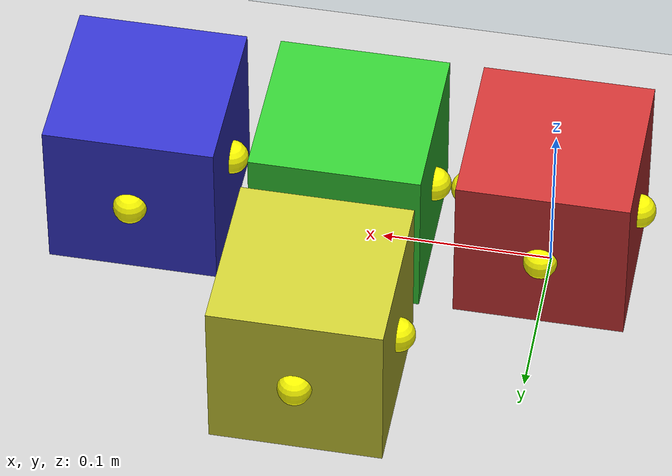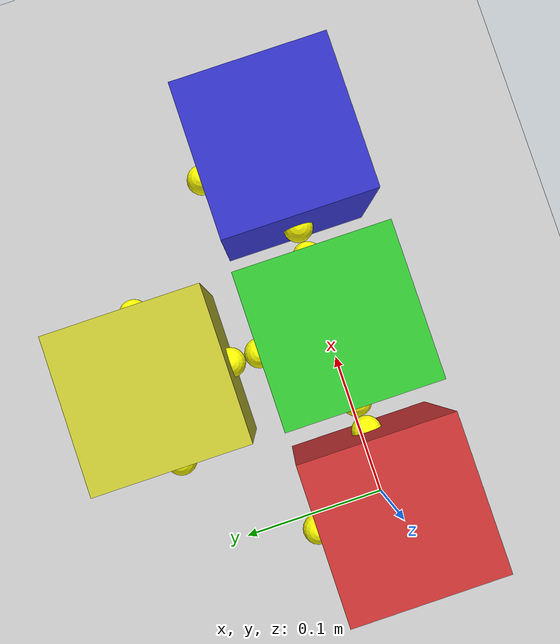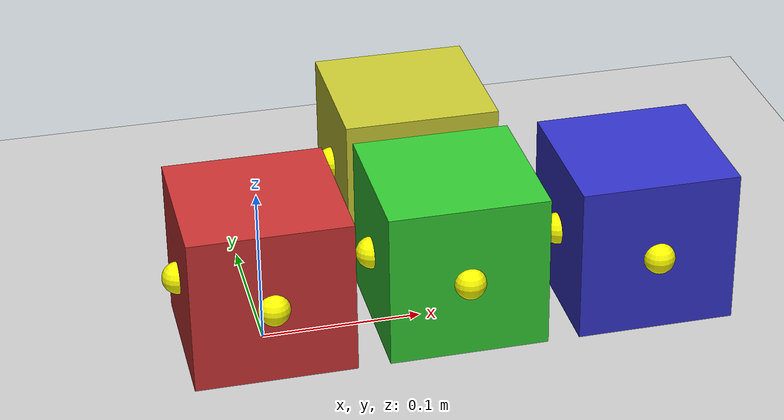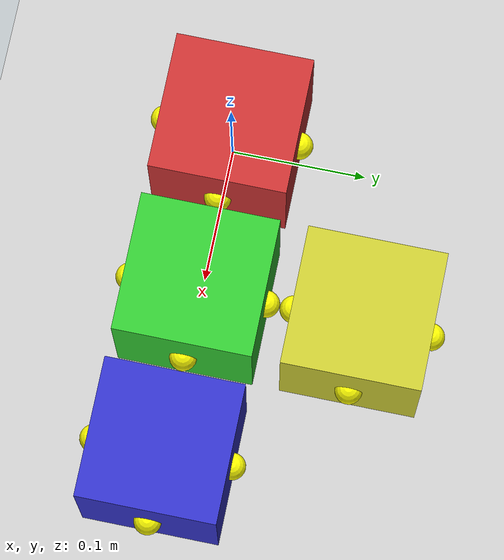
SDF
<?xml version="1.0"?>
<sdf version="1.9">
  <world name="docking_demo">
    <!-- Physics configuration -->
    <physics name="1ms" type="ignored">
      <max_step_size>0.001</max_step_size>
      <real_time_factor>1.0</real_time_factor>
    </physics>

    <!-- Required system plugins -->
    <plugin filename="gz-sim-physics-system"
            name="gz::sim::systems::Physics">
    </plugin>
    <plugin filename="gz-sim-user-commands-system"
            name="gz::sim::systems::UserCommands">
    </plugin>
    <plugin filename="gz-sim-scene-broadcaster-system"
            name="gz::sim::systems::SceneBroadcaster">
    </plugin>

    <!-- Lighting -->
    <light type="directional" name="sun">
      <cast_shadows>true</cast_shadows>
      <pose>0 0 10 0 0 0</pose>
      <diffuse>0.8 0.8 0.8 1</diffuse>
      <specular>0.2 0.2 0.2 1</specular>
      <attenuation>
        <range>1000</range>
        <constant>0.9</constant>
        <linear>0.01</linear>
        <quadratic>0.001</quadratic>
      </attenuation>
      <direction>-0.5 0.1 -0.9</direction>
    </light>

    <!-- Ground plane -->
    <model name="ground_plane">
      <static>true</static>
      <link name="link">
        <collision name="collision">
          <geometry>
            <plane>
              <normal>0 0 1</normal>
            </plane>
          </geometry>
        </collision>
        <visual name="visual">
          <geometry>
            <plane>
              <normal>0 0 1</normal>
              <size>100 100</size>
            </plane>
          </geometry>
          <material>
            <ambient>0.8 0.8 0.8 1</ambient>
            <diffuse>0.8 0.8 0.8 1</diffuse>
            <specular>0.8 0.8 0.8 1</specular>
          </material>
        </visual>
      </link>
    </model>

    <!-- ========== ROBOT 0 (Red) ========== -->
    <model name="robot_0">
      <pose>0 0 0.05 0 0 0</pose>
      <link name="chassis">
        <inertial>
          <mass>1.0</mass>
          <inertia>
            <ixx>0.00167</ixx>
            <iyy>0.00167</iyy>
            <izz>0.00167</izz>
            <ixy>0</ixy>
            <ixz>0</ixz>
            <iyz>0</iyz>
          </inertia>
        </inertial>
        <collision name="collision">
          <geometry>
            <box><size>0.1 0.1 0.1</size></box>
          </geometry>
        </collision>
        <visual name="visual">
          <geometry>
            <box><size>0.1 0.1 0.1</size></box>
          </geometry>
          <material>
            <ambient>0.8 0.2 0.2 1</ambient>
            <diffuse>0.8 0.2 0.2 1</diffuse>
            <specular>0.8 0.2 0.2 1</specular>
          </material>
        </visual>
      </link>
      <!-- Dock ports as small visual indicators -->
      <link name="dock_front">
        <pose relative_to="chassis">0.05 0 0 0 0 0</pose>
        <inertial>
          <mass>0.01</mass>
          <inertia>
            <ixx>0.00001</ixx><iyy>0.00001</iyy><izz>0.00001</izz>
            <ixy>0</ixy><ixz>0</ixz><iyz>0</iyz>
          </inertia>
        </inertial>
        <visual name="visual">
          <geometry><sphere><radius>0.01</radius></sphere></geometry>
          <material>
            <ambient>1 1 0 1</ambient>
            <diffuse>1 1 0 1</diffuse>
          </material>
        </visual>
      </link>
      <joint name="dock_front_joint" type="fixed">
        <parent>chassis</parent>
        <child>dock_front</child>
      </joint>
      <link name="dock_back">
        <pose relative_to="chassis">-0.05 0 0 0 0 0</pose>
        <inertial>
          <mass>0.01</mass>
          <inertia>
            <ixx>0.00001</ixx><iyy>0.00001</iyy><izz>0.00001</izz>
            <ixy>0</ixy><ixz>0</ixz><iyz>0</iyz>
          </inertia>
        </inertial>
        <visual name="visual">
          <geometry><sphere><radius>0.01</radius></sphere></geometry>
          <material>
            <ambient>1 1 0 1</ambient>
            <diffuse>1 1 0 1</diffuse>
          </material>
        </visual>
      </link>
      <joint name="dock_back_joint" type="fixed">
        <parent>chassis</parent>
        <child>dock_back</child>
      </joint>
      <link name="dock_left">
        <pose relative_to="chassis">0 0.05 0 0 0 0</pose>
        <inertial>
          <mass>0.01</mass>
          <inertia>
            <ixx>0.00001</ixx><iyy>0.00001</iyy><izz>0.00001</izz>
            <ixy>0</ixy><ixz>0</ixz><iyz>0</iyz>
          </inertia>
        </inertial>
        <visual name="visual">
          <geometry><sphere><radius>0.01</radius></sphere></geometry>
          <material>
            <ambient>1 1 0 1</ambient>
            <diffuse>1 1 0 1</diffuse>
          </material>
        </visual>
      </link>
      <joint name="dock_left_joint" type="fixed">
        <parent>chassis</parent>
        <child>dock_left</child>
      </joint>
      <link name="dock_right">
        <pose relative_to="chassis">0 -0.05 0 0 0 0</pose>
        <inertial>
          <mass>0.01</mass>
          <inertia>
            <ixx>0.00001</ixx><iyy>0.00001</iyy><izz>0.00001</izz>
            <ixy>0</ixy><ixz>0</ixz><iyz>0</iyz>
          </inertia>
        </inertial>
        <visual name="visual">
          <geometry><sphere><radius>0.01</radius></sphere></geometry>
          <material>
            <ambient>1 1 0 1</ambient>
            <diffuse>1 1 0 1</diffuse>
          </material>
        </visual>
      </link>
      <joint name="dock_right_joint" type="fixed">
        <parent>chassis</parent>
        <child>dock_right</child>
      </joint>
      <!-- DetachableJoint: robot_0 front -> robot_1 back -->
      <plugin filename="ignition-gazebo-detachable-joint-system"
              name="ignition::gazebo::systems::DetachableJoint">
        <parent_link>chassis</parent_link>
        <child_model>robot_1</child_model>
        <child_link>chassis</child_link>
        <detach_topic>/robot_0/dock_front/detach</detach_topic>
        <attach_topic>/robot_0/dock_front/attach</attach_topic>
        <output_topic>/robot_0/dock_front/state</output_topic>
      </plugin>
    </model>

    <!-- ========== ROBOT 1 (Green) ========== -->
    <model name="robot_1">
      <pose>0.12 0 0.05 0 0 0</pose>
      <link name="chassis">
        <inertial>
          <mass>1.0</mass>
          <inertia>
            <ixx>0.00167</ixx>
            <iyy>0.00167</iyy>
            <izz>0.00167</izz>
            <ixy>0</ixy>
            <ixz>0</ixz>
            <iyz>0</iyz>
          </inertia>
        </inertial>
        <collision name="collision">
          <geometry>
            <box><size>0.1 0.1 0.1</size></box>
          </geometry>
        </collision>
        <visual name="visual">
          <geometry>
            <box><size>0.1 0.1 0.1</size></box>
          </geometry>
          <material>
            <ambient>0.2 0.8 0.2 1</ambient>
            <diffuse>0.2 0.8 0.2 1</diffuse>
            <specular>0.2 0.8 0.2 1</specular>
          </material>
        </visual>
      </link>
      <link name="dock_front">
        <pose relative_to="chassis">0.05 0 0 0 0 0</pose>
        <inertial>
          <mass>0.01</mass>
          <inertia>
            <ixx>0.00001</ixx><iyy>0.00001</iyy><izz>0.00001</izz>
            <ixy>0</ixy><ixz>0</ixz><iyz>0</iyz>
          </inertia>
        </inertial>
        <visual name="visual">
          <geometry><sphere><radius>0.01</radius></sphere></geometry>
          <material>
            <ambient>1 1 0 1</ambient>
            <diffuse>1 1 0 1</diffuse>
          </material>
        </visual>
      </link>
      <joint name="dock_front_joint" type="fixed">
        <parent>chassis</parent>
        <child>dock_front</child>
      </joint>
      <link name="dock_back">
        <pose relative_to="chassis">-0.05 0 0 0 0 0</pose>
        <inertial>
          <mass>0.01</mass>
          <inertia>
            <ixx>0.00001</ixx><iyy>0.00001</iyy><izz>0.00001</izz>
            <ixy>0</ixy><ixz>0</ixz><iyz>0</iyz>
          </inertia>
        </inertial>
        <visual name="visual">
          <geometry><sphere><radius>0.01</radius></sphere></geometry>
          <material>
            <ambient>1 1 0 1</ambient>
            <diffuse>1 1 0 1</diffuse>
          </material>
        </visual>
      </link>
      <joint name="dock_back_joint" type="fixed">
        <parent>chassis</parent>
        <child>dock_back</child>
      </joint>
      <link name="dock_left">
        <pose relative_to="chassis">0 0.05 0 0 0 0</pose>
        <inertial>
          <mass>0.01</mass>
          <inertia>
            <ixx>0.00001</ixx><iyy>0.00001</iyy><izz>0.00001</izz>
            <ixy>0</ixy><ixz>0</ixz><iyz>0</iyz>
          </inertia>
        </inertial>
        <visual name="visual">
          <geometry><sphere><radius>0.01</radius></sphere></geometry>
          <material>
            <ambient>1 1 0 1</ambient>
            <diffuse>1 1 0 1</diffuse>
          </material>
        </visual>
      </link>
      <joint name="dock_left_joint" type="fixed">
        <parent>chassis</parent>
        <child>dock_left</child>
      </joint>
      <link name="dock_right">
        <pose relative_to="chassis">0 -0.05 0 0 0 0</pose>
        <inertial>
          <mass>0.01</mass>
          <inertia>
            <ixx>0.00001</ixx><iyy>0.00001</iyy><izz>0.00001</izz>
            <ixy>0</ixy><ixz>0</ixz><iyz>0</iyz>
          </inertia>
        </inertial>
        <visual name="visual">
          <geometry><sphere><radius>0.01</radius></sphere></geometry>
          <material>
            <ambient>1 1 0 1</ambient>
            <diffuse>1 1 0 1</diffuse>
          </material>
        </visual>
      </link>
      <joint name="dock_right_joint" type="fixed">
        <parent>chassis</parent>
        <child>dock_right</child>
      </joint>
      <!-- DetachableJoint: robot_1 front -> robot_2 back -->
      <plugin filename="ignition-gazebo-detachable-joint-system"
              name="ignition::gazebo::systems::DetachableJoint">
        <parent_link>chassis</parent_link>
        <child_model>robot_2</child_model>
        <child_link>chassis</child_link>
        <detach_topic>/robot_1/dock_front/detach</detach_topic>
        <attach_topic>/robot_1/dock_front/attach</attach_topic>
        <output_topic>/robot_1/dock_front/state</output_topic>
      </plugin>
      <!-- DetachableJoint: robot_1 left -> robot_3 right (branching demo) -->
      <plugin filename="ignition-gazebo-detachable-joint-system"
              name="ignition::gazebo::systems::DetachableJoint">
        <parent_link>chassis</parent_link>
        <child_model>robot_3</child_model>
        <child_link>chassis</child_link>
        <detach_topic>/robot_1/dock_left/detach</detach_topic>
        <attach_topic>/robot_1/dock_left/attach</attach_topic>
        <output_topic>/robot_1/dock_left/state</output_topic>
      </plugin>
    </model>

    <!-- ========== ROBOT 2 (Blue) ========== -->
    <model name="robot_2">
      <pose>0.24 0 0.05 0 0 0</pose>
      <link name="chassis">
        <inertial>
          <mass>1.0</mass>
          <inertia>
            <ixx>0.00167</ixx>
            <iyy>0.00167</iyy>
            <izz>0.00167</izz>
            <ixy>0</ixy>
            <ixz>0</ixz>
            <iyz>0</iyz>
          </inertia>
        </inertial>
        <collision name="collision">
          <geometry>
            <box><size>0.1 0.1 0.1</size></box>
          </geometry>
        </collision>
        <visual name="visual">
          <geometry>
            <box><size>0.1 0.1 0.1</size></box>
          </geometry>
          <material>
            <ambient>0.2 0.2 0.8 1</ambient>
            <diffuse>0.2 0.2 0.8 1</diffuse>
            <specular>0.2 0.2 0.8 1</specular>
          </material>
        </visual>
      </link>
      <link name="dock_front">
        <pose relative_to="chassis">0.05 0 0 0 0 0</pose>
        <inertial>
          <mass>0.01</mass>
          <inertia>
            <ixx>0.00001</ixx><iyy>0.00001</iyy><izz>0.00001</izz>
            <ixy>0</ixy><ixz>0</ixz><iyz>0</iyz>
          </inertia>
        </inertial>
        <visual name="visual">
          <geometry><sphere><radius>0.01</radius></sphere></geometry>
          <material>
            <ambient>1 1 0 1</ambient>
            <diffuse>1 1 0 1</diffuse>
          </material>
        </visual>
      </link>
      <joint name="dock_front_joint" type="fixed">
        <parent>chassis</parent>
        <child>dock_front</child>
      </joint>
      <link name="dock_back">
        <pose relative_to="chassis">-0.05 0 0 0 0 0</pose>
        <inertial>
          <mass>0.01</mass>
          <inertia>
            <ixx>0.00001</ixx><iyy>0.00001</iyy><izz>0.00001</izz>
            <ixy>0</ixy><ixz>0</ixz><iyz>0</iyz>
          </inertia>
        </inertial>
        <visual name="visual">
          <geometry><sphere><radius>0.01</radius></sphere></geometry>
          <material>
            <ambient>1 1 0 1</ambient>
            <diffuse>1 1 0 1</diffuse>
          </material>
        </visual>
      </link>
      <joint name="dock_back_joint" type="fixed">
        <parent>chassis</parent>
        <child>dock_back</child>
      </joint>
      <link name="dock_left">
        <pose relative_to="chassis">0 0.05 0 0 0 0</pose>
        <inertial>
          <mass>0.01</mass>
          <inertia>
            <ixx>0.00001</ixx><iyy>0.00001</iyy><izz>0.00001</izz>
            <ixy>0</ixy><ixz>0</ixz><iyz>0</iyz>
          </inertia>
        </inertial>
        <visual name="visual">
          <geometry><sphere><radius>0.01</radius></sphere></geometry>
          <material>
            <ambient>1 1 0 1</ambient>
            <diffuse>1 1 0 1</diffuse>
          </material>
        </visual>
      </link>
      <joint name="dock_left_joint" type="fixed">
        <parent>chassis</parent>
        <child>dock_left</child>
      </joint>
      <link name="dock_right">
        <pose relative_to="chassis">0 -0.05 0 0 0 0</pose>
        <inertial>
          <mass>0.01</mass>
          <inertia>
            <ixx>0.00001</ixx><iyy>0.00001</iyy><izz>0.00001</izz>
            <ixy>0</ixy><ixz>0</ixz><iyz>0</iyz>
          </inertia>
        </inertial>
        <visual name="visual">
          <geometry><sphere><radius>0.01</radius></sphere></geometry>
          <material>
            <ambient>1 1 0 1</ambient>
            <diffuse>1 1 0 1</diffuse>
          </material>
        </visual>
      </link>
      <joint name="dock_right_joint" type="fixed">
        <parent>chassis</parent>
        <child>dock_right</child>
      </joint>
    </model>

    <!-- ========== ROBOT 3 (Yellow) - Branch off robot_1 ========== -->
    <model name="robot_3">
      <pose>0.12 0.12 0.05 0 0 0</pose>
      <link name="chassis">
        <inertial>
          <mass>1.0</mass>
          <inertia>
            <ixx>0.00167</ixx>
            <iyy>0.00167</iyy>
            <izz>0.00167</izz>
            <ixy>0</ixy>
            <ixz>0</ixz>
            <iyz>0</iyz>
          </inertia>
        </inertial>
        <collision name="collision">
          <geometry>
            <box><size>0.1 0.1 0.1</size></box>
          </geometry>
        </collision>
        <visual name="visual">
          <geometry>
            <box><size>0.1 0.1 0.1</size></box>
          </geometry>
          <material>
            <ambient>0.8 0.8 0.2 1</ambient>
            <diffuse>0.8 0.8 0.2 1</diffuse>
            <specular>0.8 0.8 0.2 1</specular>
          </material>
        </visual>
      </link>
      <link name="dock_front">
        <pose relative_to="chassis">0.05 0 0 0 0 0</pose>
        <inertial>
          <mass>0.01</mass>
          <inertia>
            <ixx>0.00001</ixx><iyy>0.00001</iyy><izz>0.00001</izz>
            <ixy>0</ixy><ixz>0</ixz><iyz>0</iyz>
          </inertia>
        </inertial>
        <visual name="visual">
          <geometry><sphere><radius>0.01</radius></sphere></geometry>
          <material>
            <ambient>1 1 0 1</ambient>
            <diffuse>1 1 0 1</diffuse>
          </material>
        </visual>
      </link>
      <joint name="dock_front_joint" type="fixed">
        <parent>chassis</parent>
        <child>dock_front</child>
      </joint>
      <link name="dock_back">
        <pose relative_to="chassis">-0.05 0 0 0 0 0</pose>
        <inertial>
          <mass>0.01</mass>
          <inertia>
            <ixx>0.00001</ixx><iyy>0.00001</iyy><izz>0.00001</izz>
            <ixy>0</ixy><ixz>0</ixz><iyz>0</iyz>
          </inertia>
        </inertial>
        <visual name="visual">
          <geometry><sphere><radius>0.01</radius></sphere></geometry>
          <material>
            <ambient>1 1 0 1</ambient>
            <diffuse>1 1 0 1</diffuse>
          </material>
        </visual>
      </link>
      <joint name="dock_back_joint" type="fixed">
        <parent>chassis</parent>
        <child>dock_back</child>
      </joint>
      <link name="dock_left">
        <pose relative_to="chassis">0 0.05 0 0 0 0</pose>
        <inertial>
          <mass>0.01</mass>
          <inertia>
            <ixx>0.00001</ixx><iyy>0.00001</iyy><izz>0.00001</izz>
            <ixy>0</ixy><ixz>0</ixz><iyz>0</iyz>
          </inertia>
        </inertial>
        <visual name="visual">
          <geometry><sphere><radius>0.01</radius></sphere></geometry>
          <material>
            <ambient>1 1 0 1</ambient>
            <diffuse>1 1 0 1</diffuse>
          </material>
        </visual>
      </link>
      <joint name="dock_left_joint" type="fixed">
        <parent>chassis</parent>
        <child>dock_left</child>
      </joint>
      <link name="dock_right">
        <pose relative_to="chassis">0 -0.05 0 0 0 0</pose>
        <inertial>
          <mass>0.01</mass>
          <inertia>
            <ixx>0.00001</ixx><iyy>0.00001</iyy><izz>0.00001</izz>
            <ixy>0</ixy><ixz>0</ixz><iyz>0</iyz>
          </inertia>
        </inertial>
        <visual name="visual">
          <geometry><sphere><radius>0.01</radius></sphere></geometry>
          <material>
            <ambient>1 1 0 1</ambient>
            <diffuse>1 1 0 1</diffuse>
          </material>
        </visual>
      </link>
      <joint name="dock_right_joint" type="fixed">
        <parent>chassis</parent>
        <child>dock_right</child>
      </joint>
    </model>

  </world>
</sdf>
